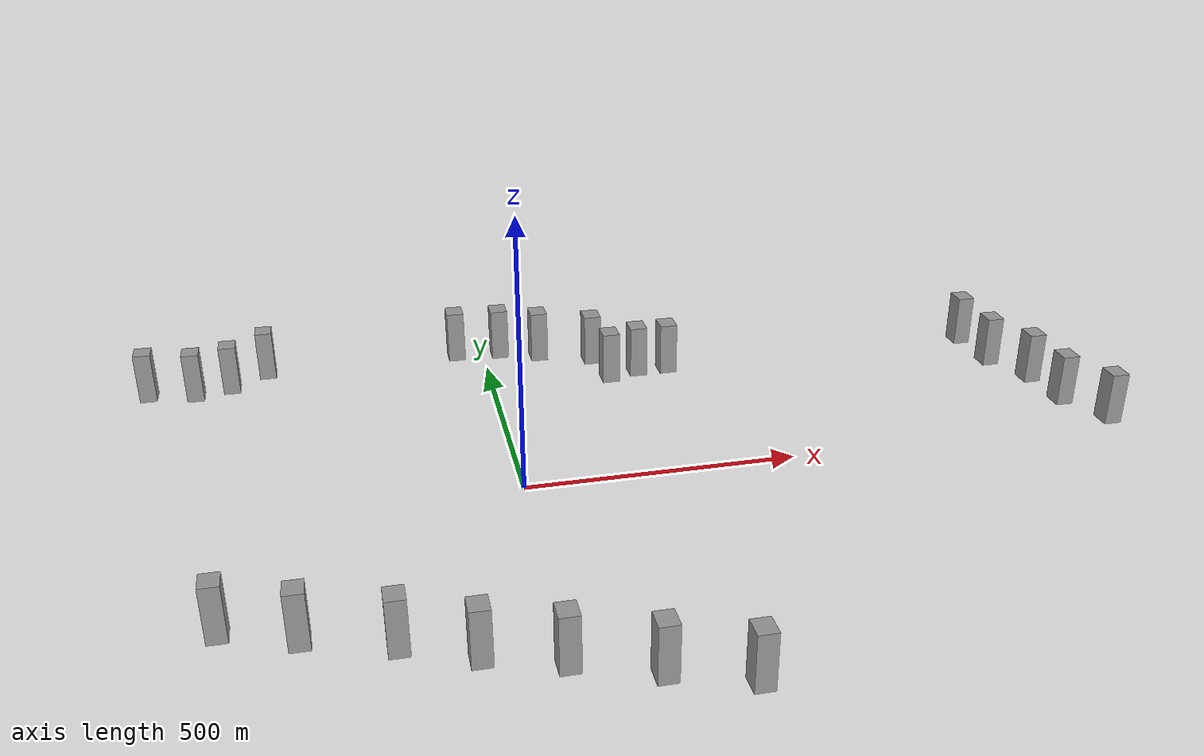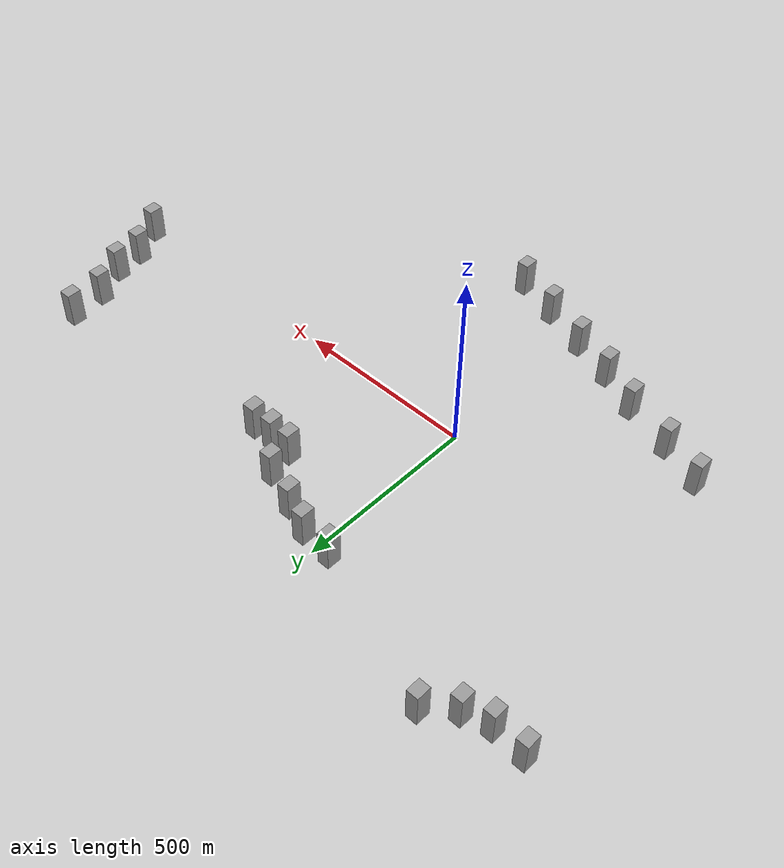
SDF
<sdf version="1.7">
 <world name="default">
  <model name="huge_building_5">
   <link name="link">
    <inertial>
     <mass>137299</mass>
     <inertia>
      <ixx>1.37911e+08</ixx>
      <ixy>0</ixy>
      <ixz>0</ixz>
      <iyy>1.32035e+08</iyy>
      <iyz>0</iyz>
      <izz>3.13216e+07</izz>
     </inertia>
    </inertial>
    <visual name="visual">
     <geometry><box><size>33.3468 40.3177 102.117</size></box></geometry>
     <material>
      <script><name>Gazebo/Grey</name><uri>file://media/materials/scripts/gazebo.material</uri></script>
      <shader type="pixel"/>
     </material>
    </visual>
    <collision name="collision">
     <geometry><box><size>33.3468 40.3177 102.117</size></box></geometry>
     <surface>
      <friction>
       <ode><mu>1</mu><mu2>1</mu2><fdir1>0 0 0</fdir1><slip1>0</slip1><slip2>0</slip2></ode>
       <torsional>
        <coefficient>1</coefficient>
        <patch_radius>0</patch_radius>
        <surface_radius>0</surface_radius>
        <use_patch_radius>1</use_patch_radius>
        <ode><slip>0</slip></ode>
       </torsional>
      </friction>
      <bounce><restitution_coefficient>0</restitution_coefficient><threshold>1e+06</threshold></bounce>
      <contact>
       <collide_without_contact>0</collide_without_contact>
       <collide_without_contact_bitmask>1</collide_without_contact_bitmask>
       <collide_bitmask>1</collide_bitmask>
       <ode>
        <soft_cfm>0</soft_cfm>
        <soft_erp>0.2</soft_erp>
        <kp>1e+13</kp>
        <kd>1</kd>
        <max_vel>0.01</max_vel>
        <min_depth>0</min_depth>
       </ode>
       <bullet>
        <split_impulse>1</split_impulse>
        <split_impulse_penetration_threshold>-0.01</split_impulse_penetration_threshold>
        <soft_cfm>0</soft_cfm>
        <soft_erp>0.2</soft_erp>
        <kp>1e+13</kp>
        <kd>1</kd>
       </bullet>
      </contact>
     </surface>
    </collision>
   </link>
   <static>0</static>
   <pose>229.243 349.063 77 0 -0 0</pose>
  </model>
  <model name="huge_building_6">
   <link name="link">
    <inertial>
     <mass>137299</mass>
     <inertia>
      <ixx>1.37911e+08</ixx>
      <ixy>0</ixy>
      <ixz>0</ixz>
      <iyy>1.32035e+08</iyy>
      <iyz>0</iyz>
      <izz>3.13216e+07</izz>
     </inertia>
    </inertial>
    <visual name="visual">
     <geometry><box><size>33.3468 40.3177 102.117</size></box></geometry>
     <material>
      <script><name>Gazebo/Grey</name><uri>file://media/materials/scripts/gazebo.material</uri></script>
      <shader type="pixel"/>
     </material>
    </visual>
    <collision name="collision">
     <geometry><box><size>33.3468 40.3177 102.117</size></box></geometry>
     <surface>
      <friction>
       <ode><mu>1</mu><mu2>1</mu2><fdir1>0 0 0</fdir1><slip1>0</slip1><slip2>0</slip2></ode>
       <torsional>
        <coefficient>1</coefficient>
        <patch_radius>0</patch_radius>
        <surface_radius>0</surface_radius>
        <use_patch_radius>1</use_patch_radius>
        <ode><slip>0</slip></ode>
       </torsional>
      </friction>
      <bounce><restitution_coefficient>0</restitution_coefficient><threshold>1e+06</threshold></bounce>
      <contact>
       <collide_without_contact>0</collide_without_contact>
       <collide_without_contact_bitmask>1</collide_without_contact_bitmask>
       <collide_bitmask>1</collide_bitmask>
       <ode>
        <soft_cfm>0</soft_cfm>
        <soft_erp>0.2</soft_erp>
        <kp>1e+13</kp>
        <kd>1</kd>
        <max_vel>0.01</max_vel>
        <min_depth>0</min_depth>
       </ode>
       <bullet>
        <split_impulse>1</split_impulse>
        <split_impulse_penetration_threshold>-0.01</split_impulse_penetration_threshold>
        <soft_cfm>0</soft_cfm>
        <soft_erp>0.2</soft_erp>
        <kp>1e+13</kp>
        <kd>1</kd>
       </bullet>
      </contact>
     </surface>
    </collision>
   </link>
   <static>0</static>
   <pose>-684.921 559.523 29 0 -0 0</pose>
  </model>
  <model name="huge_building_43">
   <link name="link">
    <inertial>
     <mass>137299</mass>
     <inertia>
      <ixx>1.37911e+08</ixx>
      <ixy>0</ixy>
      <ixz>0</ixz>
      <iyy>1.32035e+08</iyy>
      <iyz>0</iyz>
      <izz>3.13216e+07</izz>
     </inertia>
    </inertial>
    <visual name="visual">
     <geometry><box><size>33.3468 40.3177 102.117</size></box></geometry>
     <material>
      <script><name>Gazebo/Grey</name><uri>file://media/materials/scripts/gazebo.material</uri></script>
      <shader type="pixel"/>
     </material>
    </visual>
    <collision name="collision">
     <geometry><box><size>33.3468 40.3177 102.117</size></box></geometry>
     <surface>
      <friction>
       <ode><mu>1</mu><mu2>1</mu2><fdir1>0 0 0</fdir1><slip1>0</slip1><slip2>0</slip2></ode>
       <torsional>
        <coefficient>1</coefficient>
        <patch_radius>0</patch_radius>
        <surface_radius>0</surface_radius>
        <use_patch_radius>1</use_patch_radius>
        <ode><slip>0</slip></ode>
       </torsional>
      </friction>
      <bounce><restitution_coefficient>0</restitution_coefficient><threshold>1e+06</threshold></bounce>
      <contact>
       <collide_without_contact>0</collide_without_contact>
       <collide_without_contact_bitmask>1</collide_without_contact_bitmask>
       <collide_bitmask>1</collide_bitmask>
       <ode>
        <soft_cfm>0</soft_cfm>
        <soft_erp>0.2</soft_erp>
        <kp>1e+13</kp>
        <kd>1</kd>
        <max_vel>0.01</max_vel>
        <min_depth>0</min_depth>
       </ode>
       <bullet>
        <split_impulse>1</split_impulse>
        <split_impulse_penetration_threshold>-0.01</split_impulse_penetration_threshold>
        <soft_cfm>0</soft_cfm>
        <soft_erp>0.2</soft_erp>
        <kp>1e+13</kp>
        <kd>1</kd>
       </bullet>
      </contact>
     </surface>
    </collision>
   </link>
   <static>0</static>
   <pose>248.22 -574.352 24 0 -0 0</pose>
  </model>
  <model name="huge_building_44">
   <link name="link">
    <inertial>
     <mass>137299</mass>
     <inertia>
      <ixx>1.37911e+08</ixx>
      <ixy>0</ixy>
      <ixz>0</ixz>
      <iyy>1.32035e+08</iyy>
      <iyz>0</iyz>
      <izz>3.13216e+07</izz>
     </inertia>
    </inertial>
    <visual name="visual">
     <geometry><box><size>33.3468 40.3177 102.117</size></box></geometry>
     <material>
      <script><name>Gazebo/Grey</name><uri>file://media/materials/scripts/gazebo.material</uri></script>
      <shader type="pixel"/>
     </material>
    </visual>
    <collision name="collision">
     <geometry><box><size>33.3468 40.3177 102.117</size></box></geometry>
     <surface>
      <friction>
       <ode><mu>1</mu><mu2>1</mu2><fdir1>0 0 0</fdir1><slip1>0</slip1><slip2>0</slip2></ode>
       <torsional>
        <coefficient>1</coefficient>
        <patch_radius>0</patch_radius>
        <surface_radius>0</surface_radius>
        <use_patch_radius>1</use_patch_radius>
        <ode><slip>0</slip></ode>
       </torsional>
      </friction>
      <bounce><restitution_coefficient>0</restitution_coefficient><threshold>1e+06</threshold></bounce>
      <contact>
       <collide_without_contact>0</collide_without_contact>
       <collide_without_contact_bitmask>1</collide_without_contact_bitmask>
       <collide_bitmask>1</collide_bitmask>
       <ode>
        <soft_cfm>0</soft_cfm>
        <soft_erp>0.2</soft_erp>
        <kp>1e+13</kp>
        <kd>1</kd>
        <max_vel>0.01</max_vel>
        <min_depth>0</min_depth>
       </ode>
       <bullet>
        <split_impulse>1</split_impulse>
        <split_impulse_penetration_threshold>-0.01</split_impulse_penetration_threshold>
        <soft_cfm>0</soft_cfm>
        <soft_erp>0.2</soft_erp>
        <kp>1e+13</kp>
        <kd>1</kd>
       </bullet>
      </contact>
     </surface>
    </collision>
   </link>
   <static>0</static>
   <pose>118.669 -529.27 26 0 -0 0</pose>
  </model>
  <model name="huge_building_45">
   <link name="link">
    <inertial>
     <mass>137299</mass>
     <inertia>
      <ixx>1.37911e+08</ixx>
      <ixy>0</ixy>
      <ixz>0</ixz>
      <iyy>1.32035e+08</iyy>
      <iyz>0</iyz>
      <izz>3.13216e+07</izz>
     </inertia>
    </inertial>
    <visual name="visual">
     <geometry><box><size>33.3468 40.3177 102.117</size></box></geometry>
     <material>
      <script><name>Gazebo/Grey</name><uri>file://media/materials/scripts/gazebo.material</uri></script>
      <shader type="pixel"/>
     </material>
    </visual>
    <collision name="collision">
     <geometry><box><size>33.3468 40.3177 102.117</size></box></geometry>
     <surface>
      <friction>
       <ode><mu>1</mu><mu2>1</mu2><fdir1>0 0 0</fdir1><slip1>0</slip1><slip2>0</slip2></ode>
       <torsional>
        <coefficient>1</coefficient>
        <patch_radius>0</patch_radius>
        <surface_radius>0</surface_radius>
        <use_patch_radius>1</use_patch_radius>
        <ode><slip>0</slip></ode>
       </torsional>
      </friction>
      <bounce><restitution_coefficient>0</restitution_coefficient><threshold>1e+06</threshold></bounce>
      <contact>
       <collide_without_contact>0</collide_without_contact>
       <collide_without_contact_bitmask>1</collide_without_contact_bitmask>
       <collide_bitmask>1</collide_bitmask>
       <ode>
        <soft_cfm>0</soft_cfm>
        <soft_erp>0.2</soft_erp>
        <kp>1e+13</kp>
        <kd>1</kd>
        <max_vel>0.01</max_vel>
        <min_depth>0</min_depth>
       </ode>
       <bullet>
        <split_impulse>1</split_impulse>
        <split_impulse_penetration_threshold>-0.01</split_impulse_penetration_threshold>
        <soft_cfm>0</soft_cfm>
        <soft_erp>0.2</soft_erp>
        <kp>1e+13</kp>
        <kd>1</kd>
       </bullet>
      </contact>
     </surface>
    </collision>
   </link>
   <static>0</static>
   <pose>-14.1559 -480.331 28 0 -0 0</pose>
  </model>
  <model name="huge_building_46">
   <link name="link">
    <inertial>
     <mass>137299</mass>
     <inertia>
      <ixx>1.37911e+08</ixx>
      <ixy>0</ixy>
      <ixz>0</ixz>
      <iyy>1.32035e+08</iyy>
      <iyz>0</iyz>
      <izz>3.13216e+07</izz>
     </inertia>
    </inertial>
    <visual name="visual">
     <geometry><box><size>33.3468 40.3177 102.117</size></box></geometry>
     <material>
      <script><name>Gazebo/Grey</name><uri>file://media/materials/scripts/gazebo.material</uri></script>
      <shader type="pixel"/>
     </material>
    </visual>
    <collision name="collision">
     <geometry><box><size>33.3468 40.3177 102.117</size></box></geometry>
     <surface>
      <friction>
       <ode><mu>1</mu><mu2>1</mu2><fdir1>0 0 0</fdir1><slip1>0</slip1><slip2>0</slip2></ode>
       <torsional>
        <coefficient>1</coefficient>
        <patch_radius>0</patch_radius>
        <surface_radius>0</surface_radius>
        <use_patch_radius>1</use_patch_radius>
        <ode><slip>0</slip></ode>
       </torsional>
      </friction>
      <bounce><restitution_coefficient>0</restitution_coefficient><threshold>1e+06</threshold></bounce>
      <contact>
       <collide_without_contact>0</collide_without_contact>
       <collide_without_contact_bitmask>1</collide_without_contact_bitmask>
       <collide_bitmask>1</collide_bitmask>
       <ode>
        <soft_cfm>0</soft_cfm>
        <soft_erp>0.2</soft_erp>
        <kp>1e+13</kp>
        <kd>1</kd>
        <max_vel>0.01</max_vel>
        <min_depth>0</min_depth>
       </ode>
       <bullet>
        <split_impulse>1</split_impulse>
        <split_impulse_penetration_threshold>-0.01</split_impulse_penetration_threshold>
        <soft_cfm>0</soft_cfm>
        <soft_erp>0.2</soft_erp>
        <kp>1e+13</kp>
        <kd>1</kd>
       </bullet>
      </contact>
     </surface>
    </collision>
   </link>
   <static>0</static>
   <pose>-135.864 -438.778 28 0 -0 0</pose>
  </model>
  <model name="huge_building_47">
   <link name="link">
    <inertial>
     <mass>137299</mass>
     <inertia>
      <ixx>1.37911e+08</ixx>
      <ixy>0</ixy>
      <ixz>0</ixz>
      <iyy>1.32035e+08</iyy>
      <iyz>0</iyz>
      <izz>3.13216e+07</izz>
     </inertia>
    </inertial>
    <visual name="visual">
     <geometry><box><size>33.3468 40.3177 102.117</size></box></geometry>
     <material>
      <script><name>Gazebo/Grey</name><uri>file://media/materials/scripts/gazebo.material</uri></script>
      <shader type="pixel"/>
     </material>
    </visual>
    <collision name="collision">
     <geometry><box><size>33.3468 40.3177 102.117</size></box></geometry>
     <surface>
      <friction>
       <ode><mu>1</mu><mu2>1</mu2><fdir1>0 0 0</fdir1><slip1>0</slip1><slip2>0</slip2></ode>
       <torsional>
        <coefficient>1</coefficient>
        <patch_radius>0</patch_radius>
        <surface_radius>0</surface_radius>
        <use_patch_radius>1</use_patch_radius>
        <ode><slip>0</slip></ode>
       </torsional>
      </friction>
      <bounce><restitution_coefficient>0</restitution_coefficient><threshold>1e+06</threshold></bounce>
      <contact>
       <collide_without_contact>0</collide_without_contact>
       <collide_without_contact_bitmask>1</collide_without_contact_bitmask>
       <collide_bitmask>1</collide_bitmask>
       <ode>
        <soft_cfm>0</soft_cfm>
        <soft_erp>0.2</soft_erp>
        <kp>1e+13</kp>
        <kd>1</kd>
        <max_vel>0.01</max_vel>
        <min_depth>0</min_depth>
       </ode>
       <bullet>
        <split_impulse>1</split_impulse>
        <split_impulse_penetration_threshold>-0.01</split_impulse_penetration_threshold>
        <soft_cfm>0</soft_cfm>
        <soft_erp>0.2</soft_erp>
        <kp>1e+13</kp>
        <kd>1</kd>
       </bullet>
      </contact>
     </surface>
    </collision>
   </link>
   <static>0</static>
   <pose>-251.223 -387.443 28 0 -0 0</pose>
  </model>
  <model name="huge_building_48">
   <link name="link">
    <inertial>
     <mass>137299</mass>
     <inertia>
      <ixx>1.37911e+08</ixx>
      <ixy>0</ixy>
      <ixz>0</ixz>
      <iyy>1.32035e+08</iyy>
      <iyz>0</iyz>
      <izz>3.13216e+07</izz>
     </inertia>
    </inertial>
    <visual name="visual">
     <geometry><box><size>33.3468 40.3177 102.117</size></box></geometry>
     <material>
      <script><name>Gazebo/Grey</name><uri>file://media/materials/scripts/gazebo.material</uri></script>
      <shader type="pixel"/>
     </material>
    </visual>
    <collision name="collision">
     <geometry><box><size>33.3468 40.3177 102.117</size></box></geometry>
     <surface>
      <friction>
       <ode><mu>1</mu><mu2>1</mu2><fdir1>0 0 0</fdir1><slip1>0</slip1><slip2>0</slip2></ode>
       <torsional>
        <coefficient>1</coefficient>
        <patch_radius>0</patch_radius>
        <surface_radius>0</surface_radius>
        <use_patch_radius>1</use_patch_radius>
        <ode><slip>0</slip></ode>
       </torsional>
      </friction>
      <bounce><restitution_coefficient>0</restitution_coefficient><threshold>1e+06</threshold></bounce>
      <contact>
       <collide_without_contact>0</collide_without_contact>
       <collide_without_contact_bitmask>1</collide_without_contact_bitmask>
       <collide_bitmask>1</collide_bitmask>
       <ode>
        <soft_cfm>0</soft_cfm>
        <soft_erp>0.2</soft_erp>
        <kp>1e+13</kp>
        <kd>1</kd>
        <max_vel>0.01</max_vel>
        <min_depth>0</min_depth>
       </ode>
       <bullet>
        <split_impulse>1</split_impulse>
        <split_impulse_penetration_threshold>-0.01</split_impulse_penetration_threshold>
        <soft_cfm>0</soft_cfm>
        <soft_erp>0.2</soft_erp>
        <kp>1e+13</kp>
        <kd>1</kd>
       </bullet>
      </contact>
     </surface>
    </collision>
   </link>
   <static>0</static>
   <pose>-393.666 -340.307 28 0 -0 0</pose>
  </model>
  <model name="huge_building_49">
   <link name="link">
    <inertial>
     <mass>137299</mass>
     <inertia>
      <ixx>1.37911e+08</ixx>
      <ixy>0</ixy>
      <ixz>0</ixz>
      <iyy>1.32035e+08</iyy>
      <iyz>0</iyz>
      <izz>3.13216e+07</izz>
     </inertia>
    </inertial>
    <visual name="visual">
     <geometry><box><size>33.3468 40.3177 102.117</size></box></geometry>
     <material>
      <script><name>Gazebo/Grey</name><uri>file://media/materials/scripts/gazebo.material</uri></script>
      <shader type="pixel"/>
     </material>
    </visual>
    <collision name="collision">
     <geometry><box><size>33.3468 40.3177 102.117</size></box></geometry>
     <surface>
      <friction>
       <ode><mu>1</mu><mu2>1</mu2><fdir1>0 0 0</fdir1><slip1>0</slip1><slip2>0</slip2></ode>
       <torsional>
        <coefficient>1</coefficient>
        <patch_radius>0</patch_radius>
        <surface_radius>0</surface_radius>
        <use_patch_radius>1</use_patch_radius>
        <ode><slip>0</slip></ode>
       </torsional>
      </friction>
      <bounce><restitution_coefficient>0</restitution_coefficient><threshold>1e+06</threshold></bounce>
      <contact>
       <collide_without_contact>0</collide_without_contact>
       <collide_without_contact_bitmask>1</collide_without_contact_bitmask>
       <collide_bitmask>1</collide_bitmask>
       <ode>
        <soft_cfm>0</soft_cfm>
        <soft_erp>0.2</soft_erp>
        <kp>1e+13</kp>
        <kd>1</kd>
        <max_vel>0.01</max_vel>
        <min_depth>0</min_depth>
       </ode>
       <bullet>
        <split_impulse>1</split_impulse>
        <split_impulse_penetration_threshold>-0.01</split_impulse_penetration_threshold>
        <soft_cfm>0</soft_cfm>
        <soft_erp>0.2</soft_erp>
        <kp>1e+13</kp>
        <kd>1</kd>
       </bullet>
      </contact>
     </surface>
    </collision>
   </link>
   <static>0</static>
   <pose>-513.927 -294.916 28 0 -0 0</pose>
  </model>
  <model name="huge_building_50">
   <link name="link">
    <inertial>
     <mass>137299</mass>
     <inertia>
      <ixx>1.37911e+08</ixx>
      <ixy>0</ixy>
      <ixz>0</ixz>
      <iyy>1.32035e+08</iyy>
      <iyz>0</iyz>
      <izz>3.13216e+07</izz>
     </inertia>
    </inertial>
    <visual name="visual">
     <geometry><box><size>33.3468 40.3177 102.117</size></box></geometry>
     <material>
      <script><name>Gazebo/Grey</name><uri>file://media/materials/scripts/gazebo.material</uri></script>
      <shader type="pixel"/>
     </material>
    </visual>
    <collision name="collision">
     <geometry><box><size>33.3468 40.3177 102.117</size></box></geometry>
     <surface>
      <friction>
       <ode><mu>1</mu><mu2>1</mu2><fdir1>0 0 0</fdir1><slip1>0</slip1><slip2>0</slip2></ode>
       <torsional>
        <coefficient>1</coefficient>
        <patch_radius>0</patch_radius>
        <surface_radius>0</surface_radius>
        <use_patch_radius>1</use_patch_radius>
        <ode><slip>0</slip></ode>
       </torsional>
      </friction>
      <bounce><restitution_coefficient>0</restitution_coefficient><threshold>1e+06</threshold></bounce>
      <contact>
       <collide_without_contact>0</collide_without_contact>
       <collide_without_contact_bitmask>1</collide_without_contact_bitmask>
       <collide_bitmask>1</collide_bitmask>
       <ode>
        <soft_cfm>0</soft_cfm>
        <soft_erp>0.2</soft_erp>
        <kp>1e+13</kp>
        <kd>1</kd>
        <max_vel>0.01</max_vel>
        <min_depth>0</min_depth>
       </ode>
       <bullet>
        <split_impulse>1</split_impulse>
        <split_impulse_penetration_threshold>-0.01</split_impulse_penetration_threshold>
        <soft_cfm>0</soft_cfm>
        <soft_erp>0.2</soft_erp>
        <kp>1e+13</kp>
        <kd>1</kd>
       </bullet>
      </contact>
     </surface>
    </collision>
   </link>
   <static>0</static>
   <pose>285.508 351.769 84 0 -0 0</pose>
  </model>
  <model name="huge_building_51">
   <link name="link">
    <inertial>
     <mass>137299</mass>
     <inertia>
      <ixx>1.37911e+08</ixx>
      <ixy>0</ixy>
      <ixz>0</ixz>
      <iyy>1.32035e+08</iyy>
      <iyz>0</iyz>
      <izz>3.13216e+07</izz>
     </inertia>
    </inertial>
    <visual name="visual">
     <geometry><box><size>33.3468 40.3177 102.117</size></box></geometry>
     <material>
      <script><name>Gazebo/Grey</name><uri>file://media/materials/scripts/gazebo.material</uri></script>
      <shader type="pixel"/>
     </material>
    </visual>
    <collision name="collision">
     <geometry><box><size>33.3468 40.3177 102.117</size></box></geometry>
     <surface>
      <friction>
       <ode><mu>1</mu><mu2>1</mu2><fdir1>0 0 0</fdir1><slip1>0</slip1><slip2>0</slip2></ode>
       <torsional>
        <coefficient>1</coefficient>
        <patch_radius>0</patch_radius>
        <surface_radius>0</surface_radius>
        <use_patch_radius>1</use_patch_radius>
        <ode><slip>0</slip></ode>
       </torsional>
      </friction>
      <bounce><restitution_coefficient>0</restitution_coefficient><threshold>1e+06</threshold></bounce>
      <contact>
       <collide_without_contact>0</collide_without_contact>
       <collide_without_contact_bitmask>1</collide_without_contact_bitmask>
       <collide_bitmask>1</collide_bitmask>
       <ode>
        <soft_cfm>0</soft_cfm>
        <soft_erp>0.2</soft_erp>
        <kp>1e+13</kp>
        <kd>1</kd>
        <max_vel>0.01</max_vel>
        <min_depth>0</min_depth>
       </ode>
       <bullet>
        <split_impulse>1</split_impulse>
        <split_impulse_penetration_threshold>-0.01</split_impulse_penetration_threshold>
        <soft_cfm>0</soft_cfm>
        <soft_erp>0.2</soft_erp>
        <kp>1e+13</kp>
        <kd>1</kd>
       </bullet>
      </contact>
     </surface>
    </collision>
   </link>
   <static>0</static>
   <pose>347.122 352.125 84 0 -0 0</pose>
  </model>
  <model name="huge_building_52">
   <link name="link">
    <inertial>
     <mass>137299</mass>
     <inertia>
      <ixx>1.37911e+08</ixx>
      <ixy>0</ixy>
      <ixz>0</ixz>
      <iyy>1.32035e+08</iyy>
      <iyz>0</iyz>
      <izz>3.13216e+07</izz>
     </inertia>
    </inertial>
    <visual name="visual">
     <geometry><box><size>33.3468 40.3177 102.117</size></box></geometry>
     <material>
      <script><name>Gazebo/Grey</name><uri>file://media/materials/scripts/gazebo.material</uri></script>
      <shader type="pixel"/>
     </material>
    </visual>
    <collision name="collision">
     <geometry><box><size>33.3468 40.3177 102.117</size></box></geometry>
     <surface>
      <friction>
       <ode><mu>1</mu><mu2>1</mu2><fdir1>0 0 0</fdir1><slip1>0</slip1><slip2>0</slip2></ode>
       <torsional>
        <coefficient>1</coefficient>
        <patch_radius>0</patch_radius>
        <surface_radius>0</surface_radius>
        <use_patch_radius>1</use_patch_radius>
        <ode><slip>0</slip></ode>
       </torsional>
      </friction>
      <bounce><restitution_coefficient>0</restitution_coefficient><threshold>1e+06</threshold></bounce>
      <contact>
       <collide_without_contact>0</collide_without_contact>
       <collide_without_contact_bitmask>1</collide_without_contact_bitmask>
       <collide_bitmask>1</collide_bitmask>
       <ode>
        <soft_cfm>0</soft_cfm>
        <soft_erp>0.2</soft_erp>
        <kp>1e+13</kp>
        <kd>1</kd>
        <max_vel>0.01</max_vel>
        <min_depth>0</min_depth>
       </ode>
       <bullet>
        <split_impulse>1</split_impulse>
        <split_impulse_penetration_threshold>-0.01</split_impulse_penetration_threshold>
        <soft_cfm>0</soft_cfm>
        <soft_erp>0.2</soft_erp>
        <kp>1e+13</kp>
        <kd>1</kd>
       </bullet>
      </contact>
     </surface>
    </collision>
   </link>
   <static>0</static>
   <pose>207.129 427.203 84 0 -0 0</pose>
  </model>
  <model name="huge_building_53">
   <link name="link">
    <inertial>
     <mass>137299</mass>
     <inertia>
      <ixx>1.37911e+08</ixx>
      <ixy>0</ixy>
      <ixz>0</ixz>
      <iyy>1.32035e+08</iyy>
      <iyz>0</iyz>
      <izz>3.13216e+07</izz>
     </inertia>
    </inertial>
    <visual name="visual">
     <geometry><box><size>33.3468 40.3177 102.117</size></box></geometry>
     <material>
      <script><name>Gazebo/Grey</name><uri>file://media/materials/scripts/gazebo.material</uri></script>
      <shader type="pixel"/>
     </material>
    </visual>
    <collision name="collision">
     <geometry><box><size>33.3468 40.3177 102.117</size></box></geometry>
     <surface>
      <friction>
       <ode><mu>1</mu><mu2>1</mu2><fdir1>0 0 0</fdir1><slip1>0</slip1><slip2>0</slip2></ode>
       <torsional>
        <coefficient>1</coefficient>
        <patch_radius>0</patch_radius>
        <surface_radius>0</surface_radius>
        <use_patch_radius>1</use_patch_radius>
        <ode><slip>0</slip></ode>
       </torsional>
      </friction>
      <bounce><restitution_coefficient>0</restitution_coefficient><threshold>1e+06</threshold></bounce>
      <contact>
       <collide_without_contact>0</collide_without_contact>
       <collide_without_contact_bitmask>1</collide_without_contact_bitmask>
       <collide_bitmask>1</collide_bitmask>
       <ode>
        <soft_cfm>0</soft_cfm>
        <soft_erp>0.2</soft_erp>
        <kp>1e+13</kp>
        <kd>1</kd>
        <max_vel>0.01</max_vel>
        <min_depth>0</min_depth>
       </ode>
       <bullet>
        <split_impulse>1</split_impulse>
        <split_impulse_penetration_threshold>-0.01</split_impulse_penetration_threshold>
        <soft_cfm>0</soft_cfm>
        <soft_erp>0.2</soft_erp>
        <kp>1e+13</kp>
        <kd>1</kd>
       </bullet>
      </contact>
     </surface>
    </collision>
   </link>
   <static>0</static>
   <pose>103.752 466.772 84 0 -0 0</pose>
  </model>
  <model name="huge_building_54">
   <link name="link">
    <inertial>
     <mass>137299</mass>
     <inertia>
      <ixx>1.37911e+08</ixx>
      <ixy>0</ixy>
      <ixz>0</ixz>
      <iyy>1.32035e+08</iyy>
      <iyz>0</iyz>
      <izz>3.13216e+07</izz>
     </inertia>
    </inertial>
    <visual name="visual">
     <geometry><box><size>33.3468 40.3177 102.117</size></box></geometry>
     <material>
      <script><name>Gazebo/Grey</name><uri>file://media/materials/scripts/gazebo.material</uri></script>
      <shader type="pixel"/>
     </material>
    </visual>
    <collision name="collision">
     <geometry><box><size>33.3468 40.3177 102.117</size></box></geometry>
     <surface>
      <friction>
       <ode><mu>1</mu><mu2>1</mu2><fdir1>0 0 0</fdir1><slip1>0</slip1><slip2>0</slip2></ode>
       <torsional>
        <coefficient>1</coefficient>
        <patch_radius>0</patch_radius>
        <surface_radius>0</surface_radius>
        <use_patch_radius>1</use_patch_radius>
        <ode><slip>0</slip></ode>
       </torsional>
      </friction>
      <bounce><restitution_coefficient>0</restitution_coefficient><threshold>1e+06</threshold></bounce>
      <contact>
       <collide_without_contact>0</collide_without_contact>
       <collide_without_contact_bitmask>1</collide_without_contact_bitmask>
       <collide_bitmask>1</collide_bitmask>
       <ode>
        <soft_cfm>0</soft_cfm>
        <soft_erp>0.2</soft_erp>
        <kp>1e+13</kp>
        <kd>1</kd>
        <max_vel>0.01</max_vel>
        <min_depth>0</min_depth>
       </ode>
       <bullet>
        <split_impulse>1</split_impulse>
        <split_impulse_penetration_threshold>-0.01</split_impulse_penetration_threshold>
        <soft_cfm>0</soft_cfm>
        <soft_erp>0.2</soft_erp>
        <kp>1e+13</kp>
        <kd>1</kd>
       </bullet>
      </contact>
     </surface>
    </collision>
   </link>
   <static>0</static>
   <pose>26.5659 497.026 84 0 -0 0</pose>
  </model>
  <model name="huge_building_55">
   <link name="link">
    <inertial>
     <mass>137299</mass>
     <inertia>
      <ixx>1.37911e+08</ixx>
      <ixy>0</ixy>
      <ixz>0</ixz>
      <iyy>1.32035e+08</iyy>
      <iyz>0</iyz>
      <izz>3.13216e+07</izz>
     </inertia>
    </inertial>
    <visual name="visual">
     <geometry><box><size>33.3468 40.3177 102.117</size></box></geometry>
     <material>
      <script><name>Gazebo/Grey</name><uri>file://media/materials/scripts/gazebo.material</uri></script>
      <shader type="pixel"/>
     </material>
    </visual>
    <collision name="collision">
     <geometry><box><size>33.3468 40.3177 102.117</size></box></geometry>
     <surface>
      <friction>
       <ode><mu>1</mu><mu2>1</mu2><fdir1>0 0 0</fdir1><slip1>0</slip1><slip2>0</slip2></ode>
       <torsional>
        <coefficient>1</coefficient>
        <patch_radius>0</patch_radius>
        <surface_radius>0</surface_radius>
        <use_patch_radius>1</use_patch_radius>
        <ode><slip>0</slip></ode>
       </torsional>
      </friction>
      <bounce><restitution_coefficient>0</restitution_coefficient><threshold>1e+06</threshold></bounce>
      <contact>
       <collide_without_contact>0</collide_without_contact>
       <collide_without_contact_bitmask>1</collide_without_contact_bitmask>
       <collide_bitmask>1</collide_bitmask>
       <ode>
        <soft_cfm>0</soft_cfm>
        <soft_erp>0.2</soft_erp>
        <kp>1e+13</kp>
        <kd>1</kd>
        <max_vel>0.01</max_vel>
        <min_depth>0</min_depth>
       </ode>
       <bullet>
        <split_impulse>1</split_impulse>
        <split_impulse_penetration_threshold>-0.01</split_impulse_penetration_threshold>
        <soft_cfm>0</soft_cfm>
        <soft_erp>0.2</soft_erp>
        <kp>1e+13</kp>
        <kd>1</kd>
       </bullet>
      </contact>
     </surface>
    </collision>
   </link>
   <static>0</static>
   <pose>-62.0411 503.429 84 0 -0 0</pose>
  </model>
  <model name="huge_building_56">
   <link name="link">
    <inertial>
     <mass>137299</mass>
     <inertia>
      <ixx>1.37911e+08</ixx>
      <ixy>0</ixy>
      <ixz>0</ixz>
      <iyy>1.32035e+08</iyy>
      <iyz>0</iyz>
      <izz>3.13216e+07</izz>
     </inertia>
    </inertial>
    <visual name="visual">
     <geometry><box><size>33.3468 40.3177 102.117</size></box></geometry>
     <material>
      <script><name>Gazebo/Grey</name><uri>file://media/materials/scripts/gazebo.material</uri></script>
      <shader type="pixel"/>
     </material>
    </visual>
    <collision name="collision">
     <geometry><box><size>33.3468 40.3177 102.117</size></box></geometry>
     <surface>
      <friction>
       <ode><mu>1</mu><mu2>1</mu2><fdir1>0 0 0</fdir1><slip1>0</slip1><slip2>0</slip2></ode>
       <torsional>
        <coefficient>1</coefficient>
        <patch_radius>0</patch_radius>
        <surface_radius>0</surface_radius>
        <use_patch_radius>1</use_patch_radius>
        <ode><slip>0</slip></ode>
       </torsional>
      </friction>
      <bounce><restitution_coefficient>0</restitution_coefficient><threshold>1e+06</threshold></bounce>
      <contact>
       <collide_without_contact>0</collide_without_contact>
       <collide_without_contact_bitmask>1</collide_without_contact_bitmask>
       <collide_bitmask>1</collide_bitmask>
       <ode>
        <soft_cfm>0</soft_cfm>
        <soft_erp>0.2</soft_erp>
        <kp>1e+13</kp>
        <kd>1</kd>
        <max_vel>0.01</max_vel>
        <min_depth>0</min_depth>
       </ode>
       <bullet>
        <split_impulse>1</split_impulse>
        <split_impulse_penetration_threshold>-0.01</split_impulse_penetration_threshold>
        <soft_cfm>0</soft_cfm>
        <soft_erp>0.2</soft_erp>
        <kp>1e+13</kp>
        <kd>1</kd>
       </bullet>
      </contact>
     </surface>
    </collision>
   </link>
   <static>0</static>
   <pose>-592.605 551.384 24 0 -0 0</pose>
  </model>
  <model name="huge_building_57">
   <link name="link">
    <inertial>
     <mass>137299</mass>
     <inertia>
      <ixx>1.37911e+08</ixx>
      <ixy>0</ixy>
      <ixz>0</ixz>
      <iyy>1.32035e+08</iyy>
      <iyz>0</iyz>
      <izz>3.13216e+07</izz>
     </inertia>
    </inertial>
    <visual name="visual">
     <geometry><box><size>33.3468 40.3177 102.117</size></box></geometry>
     <material>
      <script><name>Gazebo/Grey</name><uri>file://media/materials/scripts/gazebo.material</uri></script>
      <shader type="pixel"/>
     </material>
    </visual>
    <collision name="collision">
     <geometry><box><size>33.3468 40.3177 102.117</size></box></geometry>
     <surface>
      <friction>
       <ode><mu>1</mu><mu2>1</mu2><fdir1>0 0 0</fdir1><slip1>0</slip1><slip2>0</slip2></ode>
       <torsional>
        <coefficient>1</coefficient>
        <patch_radius>0</patch_radius>
        <surface_radius>0</surface_radius>
        <use_patch_radius>1</use_patch_radius>
        <ode><slip>0</slip></ode>
       </torsional>
      </friction>
      <bounce><restitution_coefficient>0</restitution_coefficient><threshold>1e+06</threshold></bounce>
      <contact>
       <collide_without_contact>0</collide_without_contact>
       <collide_without_contact_bitmask>1</collide_without_contact_bitmask>
       <collide_bitmask>1</collide_bitmask>
       <ode>
        <soft_cfm>0</soft_cfm>
        <soft_erp>0.2</soft_erp>
        <kp>1e+13</kp>
        <kd>1</kd>
        <max_vel>0.01</max_vel>
        <min_depth>0</min_depth>
       </ode>
       <bullet>
        <split_impulse>1</split_impulse>
        <split_impulse_penetration_threshold>-0.01</split_impulse_penetration_threshold>
        <soft_cfm>0</soft_cfm>
        <soft_erp>0.2</soft_erp>
        <kp>1e+13</kp>
        <kd>1</kd>
       </bullet>
      </contact>
     </surface>
    </collision>
   </link>
   <static>0</static>
   <pose>-521.588 571.658 24 0 -0 0</pose>
  </model>
  <model name="huge_building_58">
   <link name="link">
    <inertial>
     <mass>137299</mass>
     <inertia>
      <ixx>1.37911e+08</ixx>
      <ixy>0</ixy>
      <ixz>0</ixz>
      <iyy>1.32035e+08</iyy>
      <iyz>0</iyz>
      <izz>3.13216e+07</izz>
     </inertia>
    </inertial>
    <visual name="visual">
     <geometry><box><size>33.3468 40.3177 102.117</size></box></geometry>
     <material>
      <script><name>Gazebo/Grey</name><uri>file://media/materials/scripts/gazebo.material</uri></script>
      <shader type="pixel"/>
     </material>
    </visual>
    <collision name="collision">
     <geometry><box><size>33.3468 40.3177 102.117</size></box></geometry>
     <surface>
      <friction>
       <ode><mu>1</mu><mu2>1</mu2><fdir1>0 0 0</fdir1><slip1>0</slip1><slip2>0</slip2></ode>
       <torsional>
        <coefficient>1</coefficient>
        <patch_radius>0</patch_radius>
        <surface_radius>0</surface_radius>
        <use_patch_radius>1</use_patch_radius>
        <ode><slip>0</slip></ode>
       </torsional>
      </friction>
      <bounce><restitution_coefficient>0</restitution_coefficient><threshold>1e+06</threshold></bounce>
      <contact>
       <collide_without_contact>0</collide_without_contact>
       <collide_without_contact_bitmask>1</collide_without_contact_bitmask>
       <collide_bitmask>1</collide_bitmask>
       <ode>
        <soft_cfm>0</soft_cfm>
        <soft_erp>0.2</soft_erp>
        <kp>1e+13</kp>
        <kd>1</kd>
        <max_vel>0.01</max_vel>
        <min_depth>0</min_depth>
       </ode>
       <bullet>
        <split_impulse>1</split_impulse>
        <split_impulse_penetration_threshold>-0.01</split_impulse_penetration_threshold>
        <soft_cfm>0</soft_cfm>
        <soft_erp>0.2</soft_erp>
        <kp>1e+13</kp>
        <kd>1</kd>
       </bullet>
      </contact>
     </surface>
    </collision>
   </link>
   <static>0</static>
   <pose>-450.308 628.746 24 0 -0 0</pose>
  </model>
  <model name="huge_building_80">
   <link name="link">
    <inertial>
     <mass>137299</mass>
     <inertia>
      <ixx>1.37911e+08</ixx>
      <ixy>0</ixy>
      <ixz>0</ixz>
      <iyy>1.32035e+08</iyy>
      <iyz>0</iyz>
      <izz>3.13216e+07</izz>
     </inertia>
    </inertial>
    <visual name="visual">
     <geometry><box><size>33.3468 40.3177 102.117</size></box></geometry>
     <material>
      <script><name>Gazebo/Grey</name><uri>file://media/materials/scripts/gazebo.material</uri></script>
      <shader type="pixel"/>
     </material>
    </visual>
    <collision name="collision">
     <geometry><box><size>33.3468 40.3177 102.117</size></box></geometry>
     <surface>
      <friction>
       <ode><mu>1</mu><mu2>1</mu2><fdir1>0 0 0</fdir1><slip1>0</slip1><slip2>0</slip2></ode>
       <torsional>
        <coefficient>1</coefficient>
        <patch_radius>0</patch_radius>
        <surface_radius>0</surface_radius>
        <use_patch_radius>1</use_patch_radius>
        <ode><slip>0</slip></ode>
       </torsional>
      </friction>
      <bounce><restitution_coefficient>0</restitution_coefficient><threshold>1e+06</threshold></bounce>
      <contact>
       <collide_without_contact>0</collide_without_contact>
       <collide_without_contact_bitmask>1</collide_without_contact_bitmask>
       <collide_bitmask>1</collide_bitmask>
       <ode>
        <soft_cfm>0</soft_cfm>
        <soft_erp>0.2</soft_erp>
        <kp>1e+13</kp>
        <kd>1</kd>
        <max_vel>0.01</max_vel>
        <min_depth>0</min_depth>
       </ode>
       <bullet>
        <split_impulse>1</split_impulse>
        <split_impulse_penetration_threshold>-0.01</split_impulse_penetration_threshold>
        <soft_cfm>0</soft_cfm>
        <soft_erp>0.2</soft_erp>
        <kp>1e+13</kp>
        <kd>1</kd>
       </bullet>
      </contact>
     </surface>
    </collision>
   </link>
   <static>0</static>
   <pose>1146.19 13.1375 50 0 -0 0</pose>
  </model>
  <model name="huge_building_81">
   <link name="link">
    <inertial>
     <mass>137299</mass>
     <inertia>
      <ixx>1.37911e+08</ixx>
      <ixy>0</ixy>
      <ixz>0</ixz>
      <iyy>1.32035e+08</iyy>
      <iyz>0</iyz>
      <izz>3.13216e+07</izz>
     </inertia>
    </inertial>
    <visual name="visual">
     <geometry><box><size>33.3468 40.3177 102.117</size></box></geometry>
     <material>
      <script><name>Gazebo/Grey</name><uri>file://media/materials/scripts/gazebo.material</uri></script>
      <shader type="pixel"/>
     </material>
    </visual>
    <collision name="collision">
     <geometry><box><size>33.3468 40.3177 102.117</size></box></geometry>
     <surface>
      <friction>
       <ode><mu>1</mu><mu2>1</mu2><fdir1>0 0 0</fdir1><slip1>0</slip1><slip2>0</slip2></ode>
       <torsional>
        <coefficient>1</coefficient>
        <patch_radius>0</patch_radius>
        <surface_radius>0</surface_radius>
        <use_patch_radius>1</use_patch_radius>
        <ode><slip>0</slip></ode>
       </torsional>
      </friction>
      <bounce><restitution_coefficient>0</restitution_coefficient><threshold>1e+06</threshold></bounce>
      <contact>
       <collide_without_contact>0</collide_without_contact>
       <collide_without_contact_bitmask>1</collide_without_contact_bitmask>
       <collide_bitmask>1</collide_bitmask>
       <ode>
        <soft_cfm>0</soft_cfm>
        <soft_erp>0.2</soft_erp>
        <kp>1e+13</kp>
        <kd>1</kd>
        <max_vel>0.01</max_vel>
        <min_depth>0</min_depth>
       </ode>
       <bullet>
        <split_impulse>1</split_impulse>
        <split_impulse_penetration_threshold>-0.01</split_impulse_penetration_threshold>
        <soft_cfm>0</soft_cfm>
        <soft_erp>0.2</soft_erp>
        <kp>1e+13</kp>
        <kd>1</kd>
       </bullet>
      </contact>
     </surface>
    </collision>
   </link>
   <static>0</static>
   <pose>1097.15 107.454 50 0 -0 0</pose>
  </model>
  <model name="huge_building_82">
   <link name="link">
    <inertial>
     <mass>137299</mass>
     <inertia>
      <ixx>1.37911e+08</ixx>
      <ixy>0</ixy>
      <ixz>0</ixz>
      <iyy>1.32035e+08</iyy>
      <iyz>0</iyz>
      <izz>3.13216e+07</izz>
     </inertia>
    </inertial>
    <visual name="visual">
     <geometry><box><size>33.3468 40.3177 102.117</size></box></geometry>
     <material>
      <script><name>Gazebo/Grey</name><uri>file://media/materials/scripts/gazebo.material</uri></script>
      <shader type="pixel"/>
     </material>
    </visual>
    <collision name="collision">
     <geometry><box><size>33.3468 40.3177 102.117</size></box></geometry>
     <surface>
      <friction>
       <ode><mu>1</mu><mu2>1</mu2><fdir1>0 0 0</fdir1><slip1>0</slip1><slip2>0</slip2></ode>
       <torsional>
        <coefficient>1</coefficient>
        <patch_radius>0</patch_radius>
        <surface_radius>0</surface_radius>
        <use_patch_radius>1</use_patch_radius>
        <ode><slip>0</slip></ode>
       </torsional>
      </friction>
      <bounce><restitution_coefficient>0</restitution_coefficient><threshold>1e+06</threshold></bounce>
      <contact>
       <collide_without_contact>0</collide_without_contact>
       <collide_without_contact_bitmask>1</collide_without_contact_bitmask>
       <collide_bitmask>1</collide_bitmask>
       <ode>
        <soft_cfm>0</soft_cfm>
        <soft_erp>0.2</soft_erp>
        <kp>1e+13</kp>
        <kd>1</kd>
        <max_vel>0.01</max_vel>
        <min_depth>0</min_depth>
       </ode>
       <bullet>
        <split_impulse>1</split_impulse>
        <split_impulse_penetration_threshold>-0.01</split_impulse_penetration_threshold>
        <soft_cfm>0</soft_cfm>
        <soft_erp>0.2</soft_erp>
        <kp>1e+13</kp>
        <kd>1</kd>
       </bullet>
      </contact>
     </surface>
    </collision>
   </link>
   <static>0</static>
   <pose>1075.46 200.187 58 0 -0 0</pose>
  </model>
  <model name="huge_building_83">
   <link name="link">
    <inertial>
     <mass>137299</mass>
     <inertia>
      <ixx>1.37911e+08</ixx>
      <ixy>0</ixy>
      <ixz>0</ixz>
      <iyy>1.32035e+08</iyy>
      <iyz>0</iyz>
      <izz>3.13216e+07</izz>
     </inertia>
    </inertial>
    <visual name="visual">
     <geometry><box><size>33.3468 40.3177 102.117</size></box></geometry>
     <material>
      <script><name>Gazebo/Grey</name><uri>file://media/materials/scripts/gazebo.material</uri></script>
      <shader type="pixel"/>
     </material>
    </visual>
    <collision name="collision">
     <geometry><box><size>33.3468 40.3177 102.117</size></box></geometry>
     <surface>
      <friction>
       <ode><mu>1</mu><mu2>1</mu2><fdir1>0 0 0</fdir1><slip1>0</slip1><slip2>0</slip2></ode>
       <torsional>
        <coefficient>1</coefficient>
        <patch_radius>0</patch_radius>
        <surface_radius>0</surface_radius>
        <use_patch_radius>1</use_patch_radius>
        <ode><slip>0</slip></ode>
       </torsional>
      </friction>
      <bounce><restitution_coefficient>0</restitution_coefficient><threshold>1e+06</threshold></bounce>
      <contact>
       <collide_without_contact>0</collide_without_contact>
       <collide_without_contact_bitmask>1</collide_without_contact_bitmask>
       <collide_bitmask>1</collide_bitmask>
       <ode>
        <soft_cfm>0</soft_cfm>
        <soft_erp>0.2</soft_erp>
        <kp>1e+13</kp>
        <kd>1</kd>
        <max_vel>0.01</max_vel>
        <min_depth>0</min_depth>
       </ode>
       <bullet>
        <split_impulse>1</split_impulse>
        <split_impulse_penetration_threshold>-0.01</split_impulse_penetration_threshold>
        <soft_cfm>0</soft_cfm>
        <soft_erp>0.2</soft_erp>
        <kp>1e+13</kp>
        <kd>1</kd>
       </bullet>
      </contact>
     </surface>
    </collision>
   </link>
   <static>0</static>
   <pose>1030.56 293.799 58 0 -0 0</pose>
  </model>
  <model name="huge_building_84">
   <link name="link">
    <inertial>
     <mass>137299</mass>
     <inertia>
      <ixx>1.37911e+08</ixx>
      <ixy>0</ixy>
      <ixz>0</ixz>
      <iyy>1.32035e+08</iyy>
      <iyz>0</iyz>
      <izz>3.13216e+07</izz>
     </inertia>
    </inertial>
    <visual name="visual">
     <geometry><box><size>33.3468 40.3177 102.117</size></box></geometry>
     <material>
      <script><name>Gazebo/Grey</name><uri>file://media/materials/scripts/gazebo.material</uri></script>
      <shader type="pixel"/>
     </material>
    </visual>
    <collision name="collision">
     <geometry><box><size>33.3468 40.3177 102.117</size></box></geometry>
     <surface>
      <friction>
       <ode><mu>1</mu><mu2>1</mu2><fdir1>0 0 0</fdir1><slip1>0</slip1><slip2>0</slip2></ode>
       <torsional>
        <coefficient>1</coefficient>
        <patch_radius>0</patch_radius>
        <surface_radius>0</surface_radius>
        <use_patch_radius>1</use_patch_radius>
        <ode><slip>0</slip></ode>
       </torsional>
      </friction>
      <bounce><restitution_coefficient>0</restitution_coefficient><threshold>1e+06</threshold></bounce>
      <contact>
       <collide_without_contact>0</collide_without_contact>
       <collide_without_contact_bitmask>1</collide_without_contact_bitmask>
       <collide_bitmask>1</collide_bitmask>
       <ode>
        <soft_cfm>0</soft_cfm>
        <soft_erp>0.2</soft_erp>
        <kp>1e+13</kp>
        <kd>1</kd>
        <max_vel>0.01</max_vel>
        <min_depth>0</min_depth>
       </ode>
       <bullet>
        <split_impulse>1</split_impulse>
        <split_impulse_penetration_threshold>-0.01</split_impulse_penetration_threshold>
        <soft_cfm>0</soft_cfm>
        <soft_erp>0.2</soft_erp>
        <kp>1e+13</kp>
        <kd>1</kd>
       </bullet>
      </contact>
     </surface>
    </collision>
   </link>
   <static>0</static>
   <pose>1014.81 399.436 63 0 -0 0</pose>
  </model>
 </world>
</sdf>
